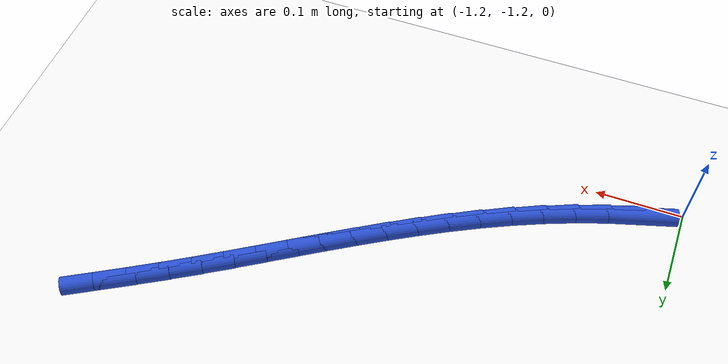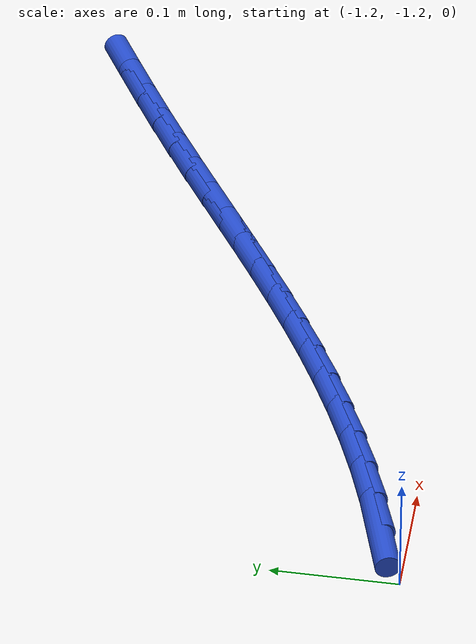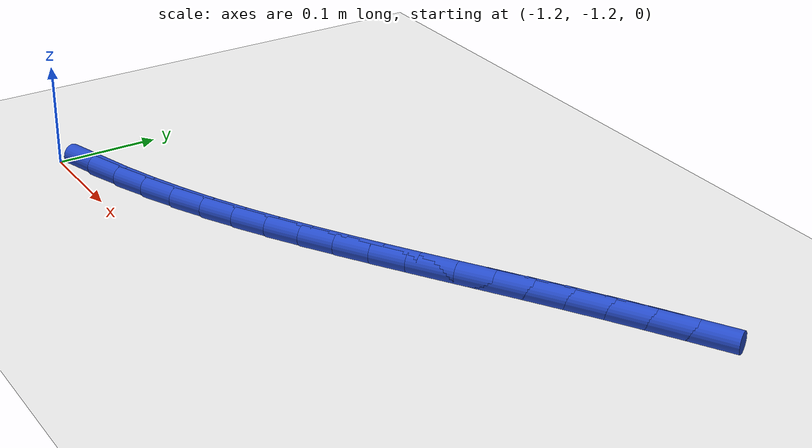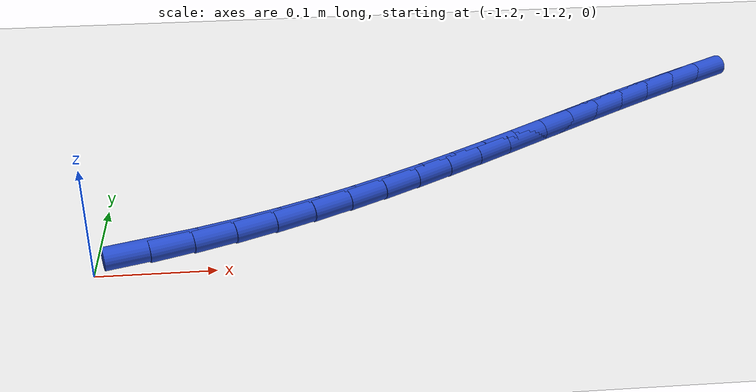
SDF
<sdf version="1.6">
 <world name="default">
  <model name="ground_plane">
   <static>1</static>
   <link name="link">
    <collision name="collision">
     <geometry><plane><normal>0 0 1</normal><size>100 100</size></plane></geometry>
     <surface><friction><ode><mu>100</mu><mu2>50</mu2></ode></friction></surface>
    </collision>
    <visual name="visual">
     <cast_shadows>0</cast_shadows>
     <geometry><plane><normal>0 0 1</normal><size>100 100</size></plane></geometry>
     <material>
      <script><uri>file://media/materials/scripts/gazebo.material</uri><name>Gazebo/WhiteGlow</name></script>
     </material>
    </visual>
   </link>
  </model>
  <model name="line">
   <link name="link_160">
    <pose>-1.1547914296442021 -1.1782634591945083 0.01 0 1.57 0.2942521642602153</pose>
    <collision name="collision">
     <geometry><cylinder><radius>0.01</radius><length>0.08</length></cylinder></geometry>
    </collision>
    <visual name="visual">
     <material>
      <script><name>Gazebo/Blue</name><uri>file://media/materials/scripts/gazebo.material</uri></script>
     </material>
     <geometry><cylinder><radius>0.01</radius><length>0.08</length></cylinder></geometry>
    </visual>
   </link>
   <link name="link_161">
    <pose>-1.119311232694567 -1.167511202597416 0.01 0 1.57 0.3422757153462515</pose>
    <collision name="collision">
     <geometry><cylinder><radius>0.01</radius><length>0.08</length></cylinder></geometry>
    </collision>
    <visual name="visual">
     <material>
      <script><name>Gazebo/Blue</name><uri>file://media/materials/scripts/gazebo.material</uri></script>
     </material>
     <geometry><cylinder><radius>0.01</radius><length>0.08</length></cylinder></geometry>
    </visual>
   </link>
   <link name="link_162">
    <pose>-1.084772423686715 -1.155205044965743 0.01 0 1.57 0.38296266931747214</pose>
    <collision name="collision">
     <geometry><cylinder><radius>0.01</radius><length>0.08</length></cylinder></geometry>
    </collision>
    <visual name="visual">
     <material>
      <script><name>Gazebo/Blue</name><uri>file://media/materials/scripts/gazebo.material</uri></script>
     </material>
     <geometry><cylinder><radius>0.01</radius><length>0.08</length></cylinder></geometry>
    </visual>
   </link>
   <link name="link_163">
    <pose>-1.05123993890795 -1.141696412821782 0.01 0 1.57 0.4203417284857821</pose>
    <collision name="collision">
     <geometry><cylinder><radius>0.01</radius><length>0.08</length></cylinder></geometry>
    </collision>
    <visual name="visual">
     <material>
      <script><name>Gazebo/Blue</name><uri>file://media/materials/scripts/gazebo.material</uri></script>
     </material>
     <geometry><cylinder><radius>0.01</radius><length>0.08</length></cylinder></geometry>
    </visual>
   </link>
   <link name="link_164">
    <pose>-1.018606838007973 -1.127109988214957 0.01 0 1.57 0.4540344342763708</pose>
    <collision name="collision">
     <geometry><cylinder><radius>0.01</radius><length>0.08</length></cylinder></geometry>
    </collision>
    <visual name="visual">
     <material>
      <script><name>Gazebo/Blue</name><uri>file://media/materials/scripts/gazebo.material</uri></script>
     </material>
     <geometry><cylinder><radius>0.01</radius><length>0.08</length></cylinder></geometry>
    </visual>
   </link>
   <link name="link_165">
    <pose>-0.9867661806364872 -1.1115704531946937 0.01 0 1.57 0.4837365088506116</pose>
    <collision name="collision">
     <geometry><cylinder><radius>0.01</radius><length>0.08</length></cylinder></geometry>
    </collision>
    <visual name="visual">
     <material>
      <script><name>Gazebo/Blue</name><uri>file://media/materials/scripts/gazebo.material</uri></script>
     </material>
     <geometry><cylinder><radius>0.01</radius><length>0.08</length></cylinder></geometry>
    </visual>
   </link>
   <link name="link_166">
    <pose>-0.9556110264431942 -1.095202489810416 0.01 0 1.57 0.5092131454376412</pose>
    <collision name="collision">
     <geometry><cylinder><radius>0.01</radius><length>0.08</length></cylinder></geometry>
    </collision>
    <visual name="visual">
     <material>
      <script><name>Gazebo/Blue</name><uri>file://media/materials/scripts/gazebo.material</uri></script>
     </material>
     <geometry><cylinder><radius>0.01</radius><length>0.08</length></cylinder></geometry>
    </visual>
   </link>
   <link name="link_167">
    <pose>-0.9250344350777955 -1.078130780111549 0.01 0 1.57 0.5302907649512393</pose>
    <collision name="collision">
     <geometry><cylinder><radius>0.01</radius><length>0.08</length></cylinder></geometry>
    </collision>
    <visual name="visual">
     <material>
      <script><name>Gazebo/Blue</name><uri>file://media/materials/scripts/gazebo.material</uri></script>
     </material>
     <geometry><cylinder><radius>0.01</radius><length>0.08</length></cylinder></geometry>
    </visual>
   </link>
   <link name="link_168">
    <pose>-0.894929466189993 -1.0604800061475173 0.01 0 1.57 0.5468470569516893</pose>
    <collision name="collision">
     <geometry><cylinder><radius>0.01</radius><length>0.08</length></cylinder></geometry>
    </collision>
    <visual name="visual">
     <material>
      <script><name>Gazebo/Blue</name><uri>file://media/materials/scripts/gazebo.material</uri></script>
     </material>
     <geometry><cylinder><radius>0.01</radius><length>0.08</length></cylinder></geometry>
    </visual>
   </link>
   <link name="link_169">
    <pose>-0.8651891794294889 -1.0423748499677454 0.01 0 1.57 0.5588008972556398</pose>
    <collision name="collision">
     <geometry><cylinder><radius>0.01</radius><length>0.08</length></cylinder></geometry>
    </collision>
    <visual name="visual">
     <material>
      <script><name>Gazebo/Blue</name><uri>file://media/materials/scripts/gazebo.material</uri></script>
     </material>
     <geometry><cylinder><radius>0.01</radius><length>0.08</length></cylinder></geometry>
    </visual>
   </link>
   <link name="link_170">
    <pose>-0.8357066344459844 -1.023939993621658 0.01 0 1.57 0.5661033776286999</pose>
    <collision name="collision">
     <geometry><cylinder><radius>0.01</radius><length>0.08</length></cylinder></geometry>
    </collision>
    <visual name="visual">
     <material>
      <script><name>Gazebo/Blue</name><uri>file://media/materials/scripts/gazebo.material</uri></script>
     </material>
     <geometry><cylinder><radius>0.01</radius><length>0.08</length></cylinder></geometry>
    </visual>
   </link>
   <link name="link_171">
    <pose>-0.8063748908891828 -1.0053001191586806 0.01 0 1.57 0.568730808180263</pose>
    <collision name="collision">
     <geometry><cylinder><radius>0.01</radius><length>0.08</length></cylinder></geometry>
    </collision>
    <visual name="visual">
     <material>
      <script><name>Gazebo/Blue</name><uri>file://media/materials/scripts/gazebo.material</uri></script>
     </material>
     <geometry><cylinder><radius>0.01</radius><length>0.08</length></cylinder></geometry>
    </visual>
   </link>
   <link name="link_172">
    <pose>-0.7770870084087848 -0.986579908628237 0.01 0 1.57 0.5666802257759372</pose>
    <collision name="collision">
     <geometry><cylinder><radius>0.01</radius><length>0.08</length></cylinder></geometry>
    </collision>
    <visual name="visual">
     <material>
      <script><name>Gazebo/Blue</name><uri>file://media/materials/scripts/gazebo.material</uri></script>
     </material>
     <geometry><cylinder><radius>0.01</radius><length>0.08</length></cylinder></geometry>
    </visual>
   </link>
   <link name="link_173">
    <pose>-0.7477360466544931 -0.9679040440797523 0.01 0 1.57 0.5599676821854508</pose>
    <collision name="collision">
     <geometry><cylinder><radius>0.01</radius><length>0.08</length></cylinder></geometry>
    </collision>
    <visual name="visual">
     <material>
      <script><name>Gazebo/Blue</name><uri>file://media/materials/scripts/gazebo.material</uri></script>
     </material>
     <geometry><cylinder><radius>0.01</radius><length>0.08</length></cylinder></geometry>
    </visual>
   </link>
   <link name="link_174">
    <pose>-0.7182150652760092 -0.9493972075626513 0.01 0 1.57 0.5487690167064951</pose>
    <collision name="collision">
     <geometry><cylinder><radius>0.01</radius><length>0.08</length></cylinder></geometry>
    </collision>
    <visual name="visual">
     <material>
      <script><name>Gazebo/Blue</name><uri>file://media/materials/scripts/gazebo.material</uri></script>
     </material>
     <geometry><cylinder><radius>0.01</radius><length>0.08</length></cylinder></geometry>
    </visual>
   </link>
   <link name="link_175">
    <pose>-0.6884192262038653 -0.9311796506947697 0.01 0 1.57 0.5365756504539371</pose>
    <collision name="collision">
     <geometry><cylinder><radius>0.01</radius><length>0.08</length></cylinder></geometry>
    </collision>
    <visual name="visual">
     <material>
      <script><name>Gazebo/Blue</name><uri>file://media/materials/scripts/gazebo.material</uri></script>
     </material>
     <geometry><cylinder><radius>0.01</radius><length>0.08</length></cylinder></geometry>
    </visual>
   </link>
   <link name="link_176">
    <pose>-0.6582954675194003 -0.9132625099411061 0.01 0 1.57 0.5269905986832899</pose>
    <collision name="collision">
     <geometry><cylinder><radius>0.01</radius><length>0.08</length></cylinder></geometry>
    </collision>
    <visual name="visual">
     <material>
      <script><name>Gazebo/Blue</name><uri>file://media/materials/scripts/gazebo.material</uri></script>
     </material>
     <geometry><cylinder><radius>0.01</radius><length>0.08</length></cylinder></geometry>
    </visual>
   </link>
   <link name="link_177">
    <pose>-0.6278444801054514 -0.8955436409402727 0.01 0 1.57 0.5203015934883348</pose>
    <collision name="collision">
     <geometry><cylinder><radius>0.01</radius><length>0.08</length></cylinder></geometry>
    </collision>
    <visual name="visual">
     <material>
      <script><name>Gazebo/Blue</name><uri>file://media/materials/scripts/gazebo.material</uri></script>
     </material>
     <geometry><cylinder><radius>0.01</radius><length>0.08</length></cylinder></geometry>
    </visual>
   </link>
  </model>
 </world>
</sdf>
